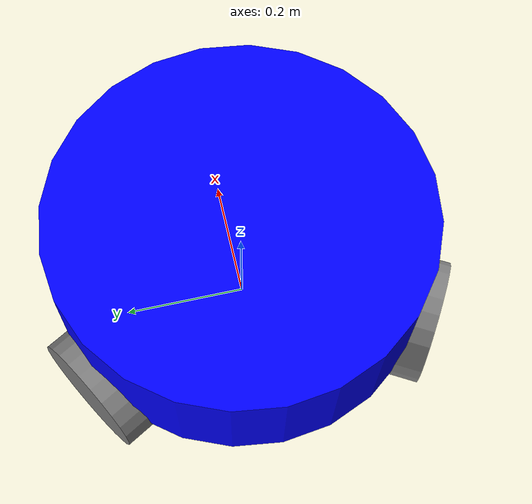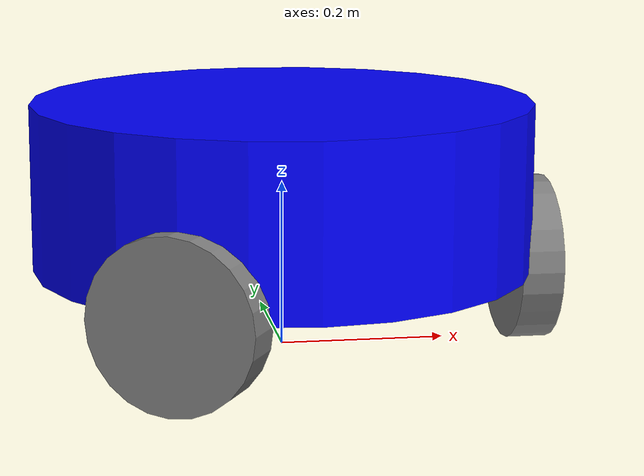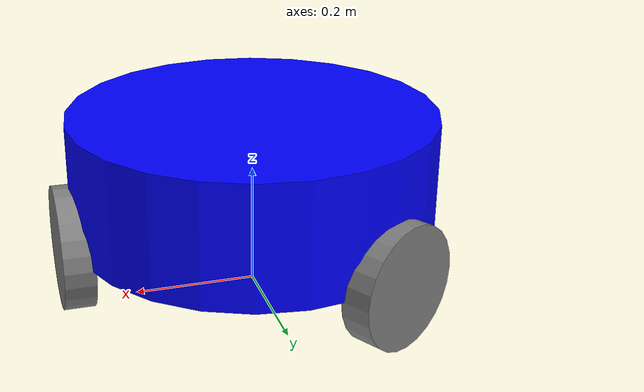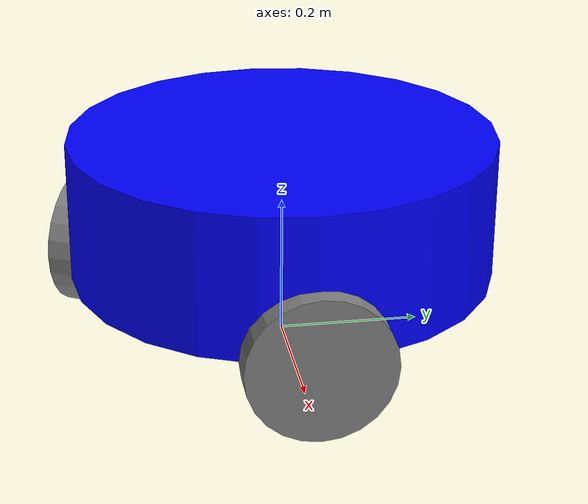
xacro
<?xml version="1.0"?>
<robot name="holonomic_robot" xmlns:xacro="http://www.ros.org/wiki/xacro">

  <material name="blue"><color rgba="0 0 1 1"/></material>
  <material name="grey"><color rgba="0.5 0.5 0.5 1"/></material>

  <xacro:property name="base_radius" value="0.3" />
  <xacro:property name="base_height" value="0.2" />
  <xacro:property name="wheel_radius" value="0.1" />
  <xacro:property name="wheel_length" value="0.05" />

  <xacro:macro name="cylinder_inertia" params="m r h">
    <inertial>
      <mass value="${m}" />
      <inertia ixx="${(m/12) * (3*r*r + h*h)}" ixy="0" ixz="0"
               iyy="${(m/12) * (3*r*r + h*h)}" iyz="0"
               izz="${(1/2)*m*r*r}" />
    </inertial>
  </xacro:macro>

  <link name="base_footprint"/>
  <joint name="base_joint" type="fixed">
    <parent link="base_footprint"/><child link="base_link"/>
    <origin xyz="0 0 ${wheel_radius}" rpy="0 0 0"/>
  </joint>

  <link name="base_link">
    <visual>
      <geometry><cylinder radius="${base_radius}" length="${base_height}"/></geometry>
      <origin xyz="0 0 ${base_height/2}" rpy="0 0 0"/>
      <material name="blue"/>
    </visual>
    <collision>
      <geometry><cylinder radius="${base_radius}" length="${base_height}"/></geometry>
    </collision>
    <xacro:cylinder_inertia m="5.0" r="${base_radius}" h="${base_height}"/>
  </link>

  <xacro:include filename="three_wheel_holonomic.xacro" />
  <xacro:include filename="three_wheel_holonomic.ros2_control.xacro" />

</robot>

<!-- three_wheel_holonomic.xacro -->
<robot xmlns:xacro="http://www.ros.org/wiki/xacro">

  <xacro:macro name="omni_wheel" params="prefix">
    <link name="${prefix}_link">
      <visual>
        <geometry><cylinder radius="${wheel_radius}" length="${wheel_length}" /></geometry>
        <origin xyz="0 0 0" rpy="1.5708 0 0" />
        <material name="grey" />
      </visual>
      <collision>
        <geometry><cylinder radius="${wheel_radius}" length="${wheel_length}" /></geometry>
        <origin xyz="0 0 0" rpy="1.5708 0 0" />
      </collision>
      <xacro:cylinder_inertia m="0.5" r="${wheel_radius}" h="${wheel_length}" />
    </link>
    <gazebo reference="${prefix}_link">
      <mu1 value="0.01"/><mu2 value="0.01"/>
    </gazebo>
  </xacro:macro>

  <xacro:omni_wheel prefix="wheel_A" />
  <xacro:omni_wheel prefix="wheel_B" />
  <xacro:omni_wheel prefix="wheel_C" />

  <gazebo reference="wheel_A_link">
    <mu1 value="1.0"/> <mu2 value="1.0"/> </gazebo>

  <gazebo reference="wheel_B_link">
    <mu1 value="1.0"/>
    <mu2 value="1.0"/>
  </gazebo>

  <gazebo reference="wheel_C_link">
    <mu1 value="1.0"/>
    <mu2 value="1.0"/>
  </gazebo>

  <joint name="wheel_A_joint" type="continuous">
    <parent link="base_link"/>
    <child link="wheel_A_link"/>
    <origin rpy="0 0 -1.57" xyz="0.3 0 0"/>
    <axis xyz="0 1 0"/>
    <limit effort="100.0" velocity="100.0"/> </joint>

  <joint name="wheel_B_joint" type="continuous">
    <parent link="base_link"/>
    <child link="wheel_B_link"/>
    <origin rpy="0 0 0.523" xyz="-0.14998395164135145 0.2598168859986678 0"/>
    <axis xyz="0 1 0"/>
    <limit effort="100.0" velocity="100.0"/> </joint>

  <joint name="wheel_C_joint" type="continuous">
    <parent link="base_link"/>
    <child link="wheel_C_link"/>
    <origin rpy="0 0 2.617" xyz="-0.1500320950002983 -0.2597890884348714 0"/>
    <axis xyz="0 1 0"/>
    <limit effort="100.0" velocity="100.0"/> </joint>

</robot>
